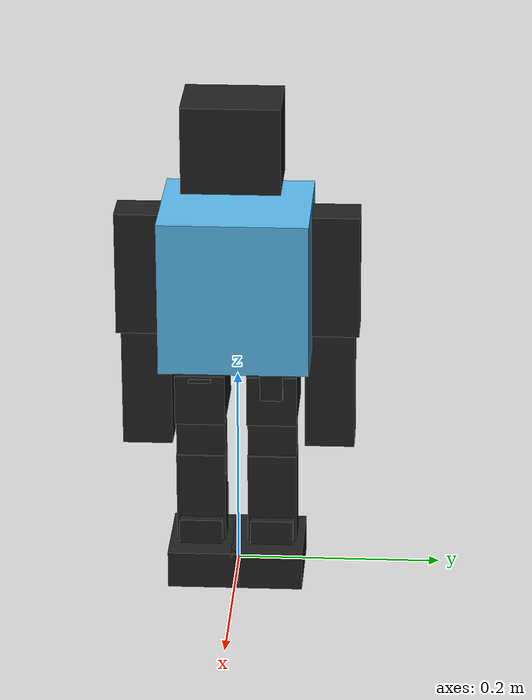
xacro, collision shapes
<?xml version="1.0" ?>

<robot name="soccerbot" xmlns:xacro="http://www.ros.org/wiki/xacro">

    <xacro:property name="PI" value="3.1415926535897931"/>

    <xacro:include filename="$(find soccer_description)/models/soccerbot/model.gazebo" />
    <!-- Import Rviz colors -->
    <xacro:include filename="$(find soccer_description)/models/soccerbot/materials.xacro" />

    <!-- Links -->
    <link name="base_link" />
    <link name="torso">
        <inertial>
            <mass value="1529.201"/>
            <origin rpy="0 0 0" xyz="0.0082498 -0.0017440 -0.0522479"/>
            <inertia ixx="4.323" ixy="0.006" ixz="0.040" iyy="5.198" iyz="-0.015" izz="3.567"/>
        </inertial>
        <collision name="collision">
            <origin rpy="0 0 0" xyz="0 0 -0.052"/>
            <geometry>
                <box size="0.130 0.145 0.152"/>
            </geometry>
        </collision>
        <visual name="visual">
            <origin rpy="0 0 0" xyz="0 0 0"/>
            <geometry>
                <mesh filename="package://soccer_description/meshes/Torso.dae" scale="1 1 1"/>
            </geometry>
        </visual>
    </link>
    <link name="camera" />
    <link name="imu_link" />
    <link name="neck">
        <inertial>
            <mass value="11.294"/>
            <origin rpy="0  0  0" xyz="0 -0.0006476 0.0092453"/>
            <inertia ixx="0.005" ixy="0" ixz="0" iyy="0.001" iyz="0" izz="0.005"/>
        </inertial>
        <collision name="collision">
            <origin rpy="0  0  0" xyz="0 0 0.0165"/>
            <geometry>
                <box size="0.022 0.0523 0.033"/>
            </geometry>
        </collision>
        <visual name="visual">
            <origin rpy="0  0  0" xyz="0  0  0"/>
            <geometry>
                <mesh filename="package://soccer_description/meshes/Neck.dae" scale="1 1 1"/>
            </geometry>
            <material name="black" />
        </visual>
    </link>
    <link name="head">
        <inertial>
            <mass value="282.919"/>
            <origin rpy="0  0  0" xyz="0.0237166 0.0018096 0.0255966"/>
            <inertia ixx="0.206" ixy="0.001" ixz="-0.057" iyy="0.206" iyz="0.003" izz="0.160"/>
        </inertial>
        <collision name="collision">
            <origin rpy="0  0  0" xyz="0.01735 0 0.01995"/>
            <geometry>
                <box size="0.0712 0.094 0.0839"/>
            </geometry>
        </collision>
        <visual name="visual">
            <origin rpy="0  0  0" xyz="0  0  0"/>
            <geometry>
                <mesh filename="package://soccer_description/meshes/Head.dae" scale="1 1 1"/>
            </geometry>
            <material name="black" />
        </visual>
    </link>

    <link name="right_hip_side">
        <inertial>
            <mass value="9.364"/>
            <origin rpy="0  0  0" xyz="0.0003695 0.0000 0.01689"/>
            <inertia ixx="0.002" ixy="0.000" ixz="0.000" iyy="0.005" iyz="0.000" izz="0.004"/>
        </inertial>
        <collision name="collision">
            <origin rpy="0  0  0" xyz="0 0 0.00899"/>
            <geometry>
                <box size="0.0475 0.022 0.039"/>
            </geometry>
        </collision>
        <visual name="visual">
            <origin rpy="0  0  0" xyz="0  0  0"/>
            <geometry>
                <mesh filename="package://soccer_description/meshes/Right Hip Side.dae" scale="1 1 1"/>
            </geometry>
            <material name="black" />
        </visual>
    </link>
    <link name="right_hip_front">
        <inertial>
            <mass value="153.186"/>
            <origin rpy="0 0 0" xyz="-0.02093 0 -0.011313"/>
            <inertia ixx="0.041" ixy="0.000" ixz="-0.002" iyy="0.118" iyz="0.000" izz="0.106"/>
        </inertial>
        <collision name="collision">
            <origin rpy="0 0 0" xyz="-0.02187 0 -0.01332"/>
            <geometry>
                <box size="0.083747 0.04885 0.0506"/>
            </geometry>
        </collision>
        <visual name="visual">
            <origin rpy="0  0  0" xyz="0  0  0"/>
            <geometry>
                <mesh filename="package://soccer_description/meshes/Right Hip Front.dae" scale="1 1 1"/>
            </geometry>
            <material name="black" />
        </visual>
    </link>
    <link name="right_thigh">
        <inertial>
            <mass value="21.438"/>
            <origin rpy="0 0 0" xyz="0.0019422 0.0001419 -0.0469409"/>
            <inertia ixx="0.025" ixy="0.002" ixz="0.000" iyy="0.016" iyz="0.000" izz="0.010"/>
        </inertial>
        <collision name="collision">
            <origin rpy="0 0 0" xyz="0 0 -0.0445"/>
            <geometry>
                <box size="0.022 0.048 0.111"/>
            </geometry>
        </collision>
        <visual name="visual">
            <origin rpy="0  0  0" xyz="0  0  0"/>
            <geometry>
                <mesh filename="package://soccer_description/meshes/Right Thigh.dae" scale="1 1 1"/>
            </geometry>
            <material name="black" />
        </visual>
    </link>
    <link name="right_calve">
        <inertial>
            <mass value="86.547"/>
            <origin rpy="0  0  0" xyz="0 -0.0003259 -0.0150123"/>
            <inertia ixx="0.054" ixy="0.000" ixz="0.000" iyy="0.046" iyz="0.001" izz="0.019"/>
        </inertial>
        <collision name="collision">
            <origin rpy="0 0 0" xyz="0 0 -0.03385"/>
            <geometry>
                <box size="0.031883 0.048 0.105683"/>
            </geometry>
        </collision>
        <visual name="visual">
            <origin rpy="0 0 0" xyz="0 0 -0.0827"/>
            <geometry>
                <mesh filename="package://soccer_description/meshes/Right Calve.dae" scale="1 1 1"/>
            </geometry>
            <material name="black" />
        </visual>
    </link>
    <link name="right_ankle">
        <inertial>
            <mass value="153.186"/>
            <origin rpy="0 0 0" xyz="-0.020939 0.000 0.011313"/>
            <inertia ixx="0.041" ixy="0.000" ixz="0.002" iyy="0.118" iyz="0.000" izz="0.106"/>
        </inertial>
        <collision name="collision">
            <origin rpy="0 0 0" xyz="-0.02014 0 0.01031"/>
            <geometry>
                <box size="0.090769 0.042 0.0506"/>
            </geometry>
        </collision>
        <visual name="visual">
            <origin rpy="0  0  0" xyz="0  0  0"/>
            <geometry>
                <mesh filename="package://soccer_description/meshes/Right Ankle.dae" scale="1 1 1"/>
            </geometry>
            <material name="black" />
        </visual>
    </link>
    <link name="right_foot">
        <inertial>
            <mass value="23.216"/>
            <origin rpy="0 0 0" xyz="-0.020939 0.0 0.011313"/>
            <inertia ixx="0.006" ixy="0.000" ixz="0.000" iyy="0.018" iyz="0.000" izz="0.022"/>
        </inertial>
        <collision name="collision">
            <origin rpy="0 0 0" xyz="0.00385 -0.00401 -0.00737"/>
            <geometry>
                <box size="0.09 0.07 0.03674"/>
            </geometry>
            <contact_coefficients mu ="100.0" />
        </collision>
        <visual name="visual">
            <origin rpy="0  0  0" xyz="0  0  0"/>
            <geometry>
                <mesh filename="package://soccer_description/meshes/Right Foot.dae" scale="1 1 1"/>
            </geometry>
            <material name="black" />
        </visual>
    </link>

    <link name="left_hip_side">
        <inertial>
            <mass value="9.364"/>
            <origin rpy="0  0  0" xyz="0.0003695 0.0000 0.01689"/>
            <inertia ixx="0.002" ixy="0.000" ixz="0.000" iyy="0.005" iyz="0.000" izz="0.004"/>
        </inertial>
        <collision name="collision">
            <origin rpy="0  0  0" xyz="0 0 0.00899"/>
            <geometry>
                <box size="0.0485 0.022 0.0039"/>
            </geometry>
        </collision>
        <visual name="visual">
            <origin rpy="0  0  0" xyz="0  0  0"/>
            <geometry>
                <mesh filename="package://soccer_description/meshes/Left Hip Side.dae" scale="1 1 1"/>
            </geometry>
            <material name="black" />
        </visual>
    </link>
    <link name="left_hip_front">
        <inertial>
            <mass value="153.186"/>
            <origin rpy="0 0 0" xyz="-0.02093 0 -0.011313"/>
            <inertia ixx="0.041" ixy="0.000" ixz="-0.002" iyy="0.118" iyz="0.000" izz="0.106"/>
        </inertial>
        <collision name="collision">
            <origin rpy="0 0 0" xyz="-0.02187 0 -0.01332"/>
            <geometry>
                <box size="0.083747 0.04885 0.0506"/>
            </geometry>
        </collision>
        <visual name="visual">
            <origin rpy="0  0  0" xyz="0  0  0"/>
            <geometry>
                <mesh filename="package://soccer_description/meshes/Left Hip Front.dae" scale="1 1 1"/>
            </geometry>
            <material name="black" />
        </visual>
    </link>
    <link name="left_thigh">
        <inertial>
            <mass value="21.438"/>
            <origin rpy="0 0 0" xyz="0.0019422 -0.0001419 -0.0469409"/>
            <inertia ixx="0.025" ixy="-0.002" ixz="0.000" iyy="0.016" iyz="0.000" izz="0.010"/>
        </inertial>
        <collision name="collision">
            <origin rpy="0 0 0" xyz="0 0 -0.0445"/>
            <geometry>
                <box size="0.022 0.048 0.111"/>
            </geometry>
        </collision>
        <visual name="visual">
            <origin rpy="0  0  0" xyz="0  0  0"/>
            <geometry>
                <mesh filename="package://soccer_description/meshes/Left Thigh.dae" scale="1 1 1"/>
            </geometry>
            <material name="black" />
        </visual>
    </link>
    <link name="left_calve">
        <inertial>
            <mass value="86.547"/>
            <origin rpy="0  0  0" xyz="0 0.0003259 -0.0150123"/>
            <inertia ixx="0.054" ixy="0.000" ixz="0.000" iyy="0.046" iyz="-0.001" izz="0.019"/>
        </inertial>
        <collision name="collision">
            <origin rpy="0 0 0" xyz="0 0 -0.03385"/>
            <geometry>
                <box size="0.031883 0.048 0.105683"/>
            </geometry>
        </collision>
        <visual name="visual">
            <origin rpy="0 0 0" xyz="0 0 -0.0827"/>
            <geometry>
                <mesh filename="package://soccer_description/meshes/Left Calve.dae" scale="1 1 1"/>
            </geometry>
            <material name="black" />
        </visual>
    </link>
    <link name="left_ankle">
        <inertial>
            <mass value="153.186"/>
            <origin rpy="0 0 0" xyz="-0.020939 0.000 0.011313"/>
            <inertia ixx="0.041" ixy="0.000" ixz="0.002" iyy="0.118" iyz="0.000" izz="0.106"/>
        </inertial>
        <collision name="collision">
            <origin rpy="0 0 0" xyz="-0.02014 0 0.01031"/>
            <geometry>
                <box size="0.090769 0.042 0.0506"/>
            </geometry>
        </collision>
        <visual name="visual">
            <origin rpy="0 0 0" xyz="0  0  0"/>
            <geometry>
                <mesh filename="package://soccer_description/meshes/Left Ankle.dae" scale="1 1 1"/>
            </geometry>
            <material name="black" />
        </visual>
    </link>
    <link name="left_foot">
        <inertial>
            <mass value="23.216"/>
            <origin rpy="0 0 0" xyz="-0.020939 0.0 0.011313"/>
            <inertia ixx="0.006" ixy="0.000" ixz="0.000" iyy="0.018" iyz="0.000" izz="0.022"/>
        </inertial>
        <collision name="collision">
            <origin rpy="0 0 0" xyz="0.00385 0.00401 -0.00737 "/>
            <geometry>
                <box size="0.09 0.07 0.03674"/>
            </geometry>
            <contact_coefficients mu ="100.0" />

        </collision>
        <visual name="visual">
            <origin rpy="0  0  0" xyz="0  0  0"/>
            <geometry>
                <mesh filename="package://soccer_description/meshes/Left Foot.dae" scale="1 1 1"/>
            </geometry>
            <material name="black" />
        </visual>
    </link>

    <link name="right_bicep">
        <inertial>
            <mass value="213.5130"/>
            <origin rpy="0  0  0" xyz="0.000 0.02579 -0.04955"/>
            <inertia ixx="0.282" ixy="0.000" ixz="0.000" iyy="0.274" iyz="0.012" izz="0.024" />
        </inertial>
        <collision name="collision">
            <origin rpy="0  0  0" xyz="0 0.0225 -0.05001"/>
            <geometry>
                <box size="0.04 0.04776 0.123"/>
            </geometry>
        </collision>
        <visual name="visual">
            <origin rpy="0  0  0" xyz="0  0  0"/>
            <geometry>
                <mesh filename="package://soccer_description/meshes/Right Bicep.dae" scale="1 1 1"/>
            </geometry>
            <material name="black" />
        </visual>
    </link>
    <link name="right_forearm">
        <inertial>
            <mass value="45.7"/>
            <origin rpy="0  0  0" xyz="0 0.0245 -0.0546097" />
            <inertia ixx="0.113" ixy="0.000" ixz="0.001" iyy="0.107" iyz="0.000" izz="0.012" />
        </inertial>
        <collision name="collision">
            <origin rpy="0  0  0" xyz="-0.0055 0.01750 -0.0600"/>
            <geometry>
                <box size="0.035 0.049 0.144"/>
            </geometry>
        </collision>
        <visual name="visual">
            <origin rpy="0  0  0" xyz="0  0  0"/>
            <geometry>
                <mesh filename="package://soccer_description/meshes/Right Forearm.dae" scale="1 1 1"/>
            </geometry>
            <material name="black" />
        </visual>
    </link>

    <link name="left_bicep">
        <inertial>
            <mass value="213.5130"/>
            <origin rpy="0  0  0" xyz="0.000 -0.02579 -0.04955"/>
            <inertia ixx="0.282" ixy="0.000" ixz="0.000" iyy="0.274" iyz="-0.012" izz="0.024" />
        </inertial>
        <collision name="collision">
            <origin rpy="0  0  0" xyz="0 -0.0225 -0.05001"/>
            <geometry>
                <box size="0.04 0.047 0.123"/>
            </geometry>
        </collision>
        <visual name="visual">
            <origin rpy="0  0  0" xyz="0  0  0"/>
            <geometry>
                <mesh filename="package://soccer_description/meshes/Left Bicep.dae" scale="1 1 1"/>
            </geometry>
            <material name="black" />
        </visual>
    </link>
    <link name="left_forearm">
        <inertial>
            <mass value="45.7"/>
            <origin rpy="0  0  0" xyz="0 -0.0245 -0.0546097" />
            <inertia ixx="0.113" ixy="0.000" ixz="-0.001" iyy="0.107" iyz="0.000" izz="0.012" />
        </inertial>
        <collision name="collision">
            <origin rpy="0  0  0" xyz="-0.0055 -0.01750 -0.06001"/>
            <geometry>
                <box size="0.035 0.049 0.144"/>
            </geometry>
        </collision>
        <visual name="visual">
            <origin rpy="0  0  0" xyz="0  0  0"/>
            <geometry>
                <mesh filename="package://soccer_description/meshes/Left Forearm.dae" scale="1 1 1"/>
            </geometry>
            <material name="black" />
        </visual>
    </link>

    <!-- Joints -->
    <joint name="base_link_torso" type="fixed">
        <parent link="base_link"/>
        <child link="torso"/>
        <origin rpy="0 0 0" xyz="0 0 0.3536"/>
        <axis xyz="1 0 0"/>
    </joint>

    <joint name="torso_imu" type="fixed">
        <parent link="torso"/>
        <child link="imu_link"/>
        <origin rpy="0 0 0" xyz="0.1 0 0.0075"/>
        <axis xyz="0 0 0"/>
    </joint>

    <joint name="torso_right_hip_side" type="revolute">
        <parent link="torso"/>
        <child link="right_hip_side"/>
        <origin rpy="0 0 0" xyz="0.0135 0.035 -0.156"/>
        <axis xyz="0 0 -1"/>
        <dynamics damping="0.0" friction="2000.0" />
        <limit effort="31000.0" lower="-1.309" upper="0.524" velocity="1.0"/>
    </joint>
    <joint name="right_hip_side_hip_front" type="revolute">
        <parent link="right_hip_side"/>
        <child link="right_hip_front"/>
        <origin rpy="0 0 0" xyz="0 0 0"/>
        <axis xyz="1 0 0"/>
        <dynamics damping="0.0" friction="2000.0" />
        <limit effort="31000.0" lower="-0.785" upper="1.571" velocity="1.0"/>
    </joint>
    <joint name="right_hip_front_thigh" type="revolute">
        <parent link="right_hip_front"/>
        <child link="right_thigh"/>
        <origin rpy="0 0 0" xyz="0 0 0"/>
        <axis xyz="0 -1 0"/>
        <dynamics damping="0.0" friction="2000.0" />
        <limit effort="31000.0" lower="-0.785" upper="2.356" velocity="1.0"/>
    </joint>
    <joint name="right_thigh_calve" type="revolute">
        <parent link="right_thigh"/>
        <child link="right_calve"/>
        <origin rpy="0 0 0" xyz="0 0 -0.0929"/>
        <axis xyz="0 -1 0"/>
        <dynamics damping="0.0" friction="2000.0" />
        <limit effort="31000.0" lower="-2.793" upper="0" velocity="1.0"/>
    </joint>
    <joint name="right_calve_ankle" type="revolute">
        <parent link="right_calve"/>
        <child link="right_ankle"/>
        <origin rpy="0 0 0" xyz="0 0 -0.0827"/>
        <axis xyz="0 -1 0"/>
        <dynamics damping="0.0" friction="2000.0" />
        <limit effort="31000.0" lower="-0.785" upper="1.571" velocity="1.0"/>
    </joint>
    <joint name="right_ankle_foot" type="revolute">
        <parent link="right_ankle"/>
        <child link="right_foot"/>
        <origin rpy="0 0 0" xyz="0 0 0"/>
        <axis xyz="-1 0 0"/>
        <dynamics damping="0.0" friction="2000.0" />
        <limit effort="31000.0" lower="-0.785" upper="0.785" velocity="1.0"/>
    </joint>

    <joint name="torso_left_hip_side" type="revolute">
        <parent link="torso"/>
        <child link="left_hip_side"/>
        <origin rpy="0 0 0" xyz="0.0135 -0.035 -0.156"/>
        <axis xyz="0 0 1"/>
        <dynamics damping="0.0" friction="2000.0" />
        <limit effort="31000.0" lower="-1.309" upper="0.524" velocity="1.0"/>
    </joint>
    <joint name="left_hip_side_hip_front" type="revolute">
        <parent link="left_hip_side"/>
        <child link="left_hip_front"/>
        <origin rpy="0 0 0" xyz="0 0 0"/>
        <axis xyz="1 0 0"/>
        <dynamics damping="0.0" friction="2000.0" />
        <limit effort="31000.0" lower="-0.785" upper="1.571" velocity="1.0"/>
    </joint>
    <joint name="left_hip_front_thigh" type="revolute">
        <parent link="left_hip_front"/>
        <child link="left_thigh"/>
        <origin rpy="0 0 0" xyz="0 0 0"/>
        <axis xyz="0 -1 0"/>
        <dynamics damping="0.0" friction="2000.0" />
        <limit effort="31000.0" lower="-0.785" upper="2.356" velocity="1.0"/>
    </joint>
    <joint name="left_thigh_calve" type="revolute">
        <parent link="left_thigh"/>
        <child link="left_calve"/>
        <origin rpy="0 0 0" xyz="0 0 -0.09290"/>
        <axis xyz="0 -1 0"/>
        <dynamics damping="0.0" friction="2000.0" />
        <limit effort="31000.0" lower="-2.793" upper="0" velocity="1.0"/>
    </joint>
    <joint name="left_calve_ankle" type="revolute">
        <parent link="left_calve"/>
        <child link="left_ankle"/>
        <origin rpy="0 0 0" xyz="0 0 -0.0827"/>
        <axis xyz="0 -1 0"/>
        <dynamics damping="0.0" friction="2000.0" />
        <limit effort="31000.0" lower="-0.785" upper="1.571" velocity="1.0"/>
    </joint>
    <joint name="left_ankle_foot" type="revolute">
        <parent link="left_ankle"/>
        <child link="left_foot"/>
        <origin rpy="0 0 0" xyz="0 0 0"/>
        <axis xyz="1 0 0"/>
        <dynamics damping="0.0" friction="2000.0" />
        <limit effort="31000.0" lower="-0.785" upper="0.785" velocity="1.0"/>
    </joint>

    <joint name="torso_neck" type="revolute">
        <parent link="torso"/>
        <child link="neck"/>
        <origin rpy="0 0 0" xyz="0.024 0 0.05875"/>
        <axis xyz="0 0 1"/>
        <dynamics damping="0.0" friction="2000.0" />
        <limit effort="15000.0" lower="-1.571" upper="1.571" velocity="1.0"/>
    </joint>
    <joint name="neck_head" type="revolute">
        <parent link="neck"/>
        <child link="head"/>
        <origin rpy="0 0 0" xyz="0 0 0.024"/>
        <axis xyz="0 1 0"/>
        <dynamics damping="0.0" friction="2000.0" />
        <limit effort="15000.0" lower="-2.356" upper="2.356" velocity="1.0"/>
    </joint>
    <joint name="head_camera" type="fixed">
        <parent link="head"/>
        <child link="camera"/>
        <origin rpy="0 0 0" xyz="0.05295 0.00145 0.04740"/>
        <axis xyz="0  0  0"/>
        <dynamics damping="0.0" friction="2000.0" />
        <limit effort="0" lower="0" upper="0" velocity="0"/>
    </joint>

    <joint name="torso_right_bicep" type="revolute">
        <parent link="torso"/>
        <child link="right_bicep"/>
        <origin rpy="0 0 0" xyz="-0.0157 0.0725 0"/>
        <axis xyz="0 -1 0"/>
        <dynamics damping="0.0" friction="2000.0" />
        <limit effort="15000.0" lower="-1.571" upper="3.927" velocity="1.0"/>
    </joint>
    <joint name="right_bicep_forearm" type="revolute">
        <parent link="right_bicep"/>
        <child link="right_forearm"/>
        <origin rpy="0 0 0" xyz="0 0 -0.10"/>
        <axis xyz="0 -1 0"/>
        <dynamics damping="0.0" friction="2000.0" />
        <limit effort="15000.0" lower="0" upper="3.14159" velocity="1.0"/>
    </joint>

    <joint name="torso_left_bicep" type="revolute">
        <parent link="torso"/>
        <child link="left_bicep"/>
        <origin rpy="0 0 0" xyz="-0.0157 -0.0725 0"/>
        <axis xyz="0 -1 0"/>
        <dynamics damping="0.0" friction="2000.0" />
        <limit effort="15000.0" lower="-1.571" upper="3.927" velocity="1.0"/>
    </joint>
    <joint name="left_bicep_forearm" type="revolute">
        <parent link="left_bicep"/>
        <child link="left_forearm"/>
        <origin rpy="0 0 0" xyz="0 0 -0.10"/>
        <axis xyz="0 -1 0"/>
        <dynamics damping="0.0" friction="2000.0" />
        <limit effort="15000.0" lower="0" upper="3.14159" velocity="1.0"/>
    </joint>

    <!-- Transmission -->
    <transmission name="torso_right_hip_side">
        <type>transmission_interface/SimpleTransmission</type>
        <joint name="torso_right_hip_side">
            <hardwareInterface>hardware_interface/EffortJointInterface</hardwareInterface>
        </joint>
        <actuator name="motor7">
            <hardwareInterface>hardware_interface/EffortJointInterface</hardwareInterface>
            <mechanicalReduction>1</mechanicalReduction>
        </actuator>
    </transmission>
    <transmission name="right_hip_side_hip_front">
        <type>transmission_interface/SimpleTransmission</type>
        <joint name="right_hip_side_hip_front">
            <hardwareInterface>hardware_interface/EffortJointInterface</hardwareInterface>
        </joint>
        <actuator name="motor8">
            <hardwareInterface>hardware_interface/EffortJointInterface</hardwareInterface>
            <mechanicalReduction>1</mechanicalReduction>
        </actuator>
    </transmission>
    <transmission name="right_hip_front_thigh">
        <type>transmission_interface/SimpleTransmission</type>
        <joint name="right_hip_front_thigh">
            <hardwareInterface>hardware_interface/EffortJointInterface</hardwareInterface>
        </joint>
        <actuator name="motor9">
            <hardwareInterface>hardware_interface/EffortJointInterface</hardwareInterface>
            <mechanicalReduction>1</mechanicalReduction>
        </actuator>
    </transmission>
    <transmission name="right_thigh_calve">
        <type>transmission_interface/SimpleTransmission</type>
        <joint name="right_thigh_calve">
            <hardwareInterface>hardware_interface/EffortJointInterface</hardwareInterface>
        </joint>
        <actuator name="motor10">
            <hardwareInterface>hardware_interface/EffortJointInterface</hardwareInterface>
            <mechanicalReduction>1</mechanicalReduction>
        </actuator>
    </transmission>
    <transmission name="right_calve_ankle">
        <type>transmission_interface/SimpleTransmission</type>
        <joint name="right_calve_ankle">
            <hardwareInterface>hardware_interface/EffortJointInterface</hardwareInterface>
        </joint>
        <actuator name="motor11">
            <hardwareInterface>hardware_interface/EffortJointInterface</hardwareInterface>
            <mechanicalReduction>1</mechanicalReduction>
        </actuator>
    </transmission>
    <transmission name="right_ankle_foot">
        <type>transmission_interface/SimpleTransmission</type>
        <joint name="right_ankle_foot">
            <hardwareInterface>hardware_interface/EffortJointInterface</hardwareInterface>
        </joint>
        <actuator name="motor12">
            <hardwareInterface>hardware_interface/EffortJointInterface</hardwareInterface>
            <mechanicalReduction>1</mechanicalReduction>
        </actuator>
    </transmission>

    <transmission name="torso_left_hip_side">
        <type>transmission_interface/SimpleTransmission</type>
        <joint name="torso_left_hip_side">
            <hardwareInterface>hardware_interface/EffortJointInterface</hardwareInterface>
        </joint>
        <actuator name="motor6">
            <hardwareInterface>hardware_interface/EffortJointInterface</hardwareInterface>
            <mechanicalReduction>1</mechanicalReduction>
        </actuator>
    </transmission>
    <transmission name="left_hip_side_hip_front">
        <type>transmission_interface/SimpleTransmission</type>
        <joint name="left_hip_side_hip_front">
            <hardwareInterface>hardware_interface/EffortJointInterface</hardwareInterface>
        </joint>
        <actuator name="motor5">
            <hardwareInterface>hardware_interface/EffortJointInterface</hardwareInterface>
            <mechanicalReduction>1</mechanicalReduction>
        </actuator>
    </transmission>
    <transmission name="left_hip_front_thigh">
        <type>transmission_interface/SimpleTransmission</type>
        <joint name="left_hip_front_thigh">
            <hardwareInterface>hardware_interface/EffortJointInterface</hardwareInterface>
        </joint>
        <actuator name="motor4">
            <hardwareInterface>hardware_interface/EffortJointInterface</hardwareInterface>
            <mechanicalReduction>1</mechanicalReduction>
        </actuator>
    </transmission>
    <transmission name="left_thigh_calve">
        <type>transmission_interface/SimpleTransmission</type>
        <joint name="left_thigh_calve">
            <hardwareInterface>hardware_interface/EffortJointInterface</hardwareInterface>
        </joint>
        <actuator name="motor3">
            <hardwareInterface>hardware_interface/EffortJointInterface</hardwareInterface>
            <mechanicalReduction>1</mechanicalReduction>
        </actuator>
    </transmission>
    <transmission name="left_calve_ankle">
        <type>transmission_interface/SimpleTransmission</type>
        <joint name="left_calve_ankle">
            <hardwareInterface>hardware_interface/EffortJointInterface</hardwareInterface>
        </joint>
        <actuator name="motor2">
            <hardwareInterface>hardware_interface/EffortJointInterface</hardwareInterface>
            <mechanicalReduction>1</mechanicalReduction>
        </actuator>
    </transmission>
    <transmission name="left_ankle_foot">
        <type>transmission_interface/SimpleTransmission</type>
        <joint name="left_ankle_foot">
            <hardwareInterface>hardware_interface/EffortJointInterface</hardwareInterface>
        </joint>
        <actuator name="motor1">
            <hardwareInterface>hardware_interface/EffortJointInterface</hardwareInterface>
            <mechanicalReduction>1</mechanicalReduction>
        </actuator>
    </transmission>

    <transmission name="torso_neck">
        <type>transmission_interface/SimpleTransmission</type>
        <joint name="torso_neck">
            <hardwareInterface>hardware_interface/EffortJointInterface</hardwareInterface>
        </joint>
        <actuator name="motor13">
            <hardwareInterface>hardware_interface/EffortJointInterface</hardwareInterface>
            <mechanicalReduction>1</mechanicalReduction>
        </actuator>
    </transmission>
    <transmission name="neck_head">
        <type>transmission_interface/SimpleTransmission</type>
        <joint name="neck_head">
            <hardwareInterface>hardware_interface/EffortJointInterface</hardwareInterface>
        </joint>
        <actuator name="motor14">
            <hardwareInterface>hardware_interface/EffortJointInterface</hardwareInterface>
            <mechanicalReduction>1</mechanicalReduction>
        </actuator>
    </transmission>

    <transmission name="torso_right_bicep">
        <type>transmission_interface/SimpleTransmission</type>
        <joint name="torso_right_bicep">
            <hardwareInterface>hardware_interface/EffortJointInterface</hardwareInterface>
        </joint>
        <actuator name="motor15">
            <hardwareInterface>hardware_interface/EffortJointInterface</hardwareInterface>
            <mechanicalReduction>1</mechanicalReduction>
        </actuator>
    </transmission>
    <transmission name="right_bicep_forearm">
        <type>transmission_interface/SimpleTransmission</type>
        <joint name="right_bicep_forearm">
            <hardwareInterface>hardware_interface/EffortJointInterface</hardwareInterface>
        </joint>
        <actuator name="motor16">
            <hardwareInterface>hardware_interface/EffortJointInterface</hardwareInterface>
            <mechanicalReduction>1</mechanicalReduction>
        </actuator>
    </transmission>

    <transmission name="torso_left_bicep">
        <type>transmission_interface/SimpleTransmission</type>
        <joint name="torso_left_bicep">
            <hardwareInterface>hardware_interface/EffortJointInterface</hardwareInterface>
        </joint>
        <actuator name="motor17">
            <hardwareInterface>hardware_interface/EffortJointInterface</hardwareInterface>
            <mechanicalReduction>1</mechanicalReduction>
        </actuator>
    </transmission>
    <transmission name="left_bicep_forearm">
        <type>transmission_interface/SimpleTransmission</type>
        <joint name="left_bicep_forearm">
            <hardwareInterface>hardware_interface/EffortJointInterface</hardwareInterface>
        </joint>
        <actuator name="motor18">
            <hardwareInterface>hardware_interface/EffortJointInterface</hardwareInterface>
            <mechanicalReduction>1</mechanicalReduction>
        </actuator>
    </transmission>/

</robot>
